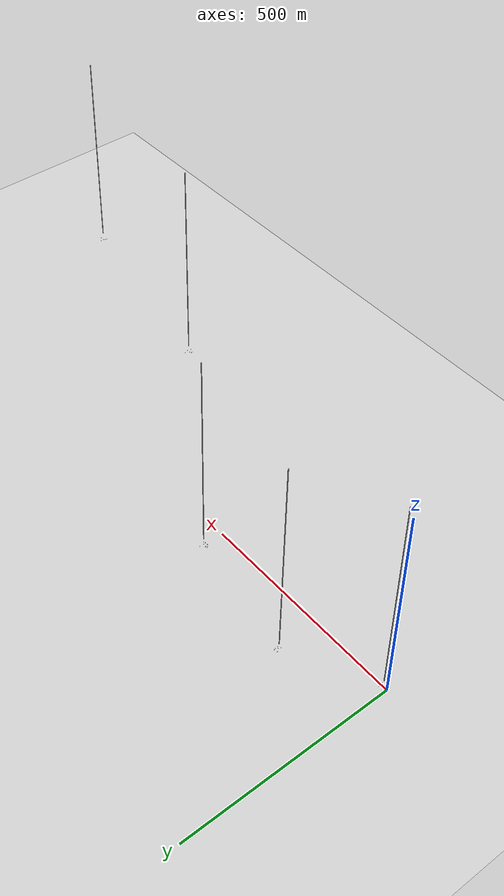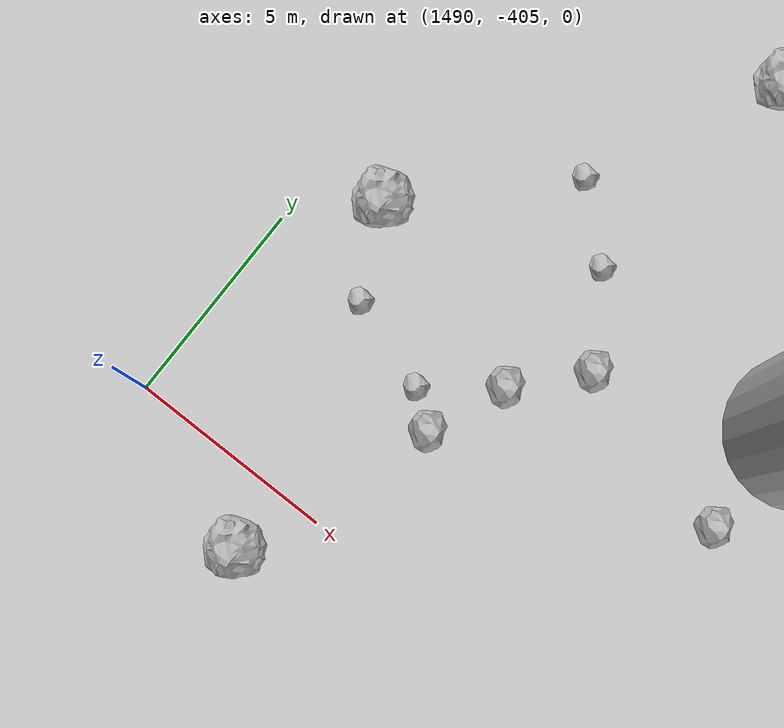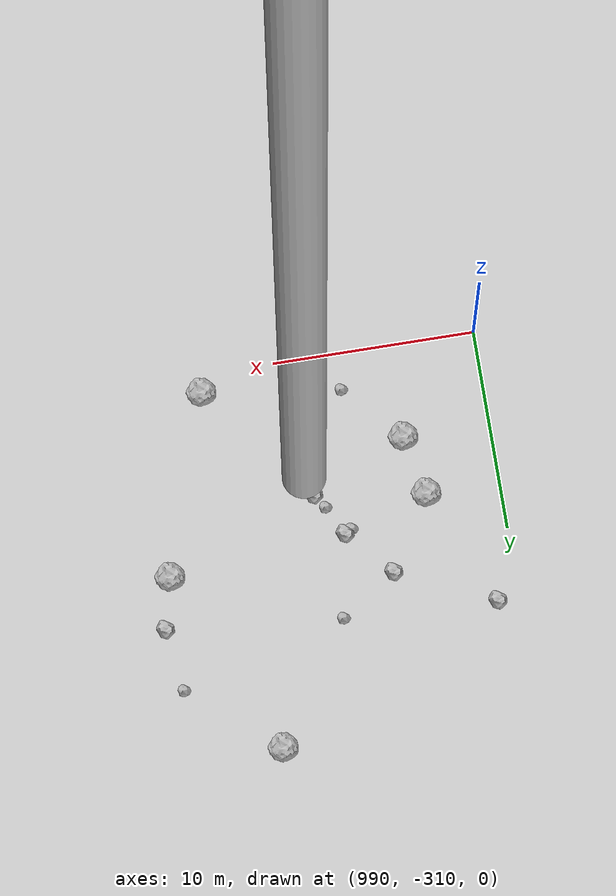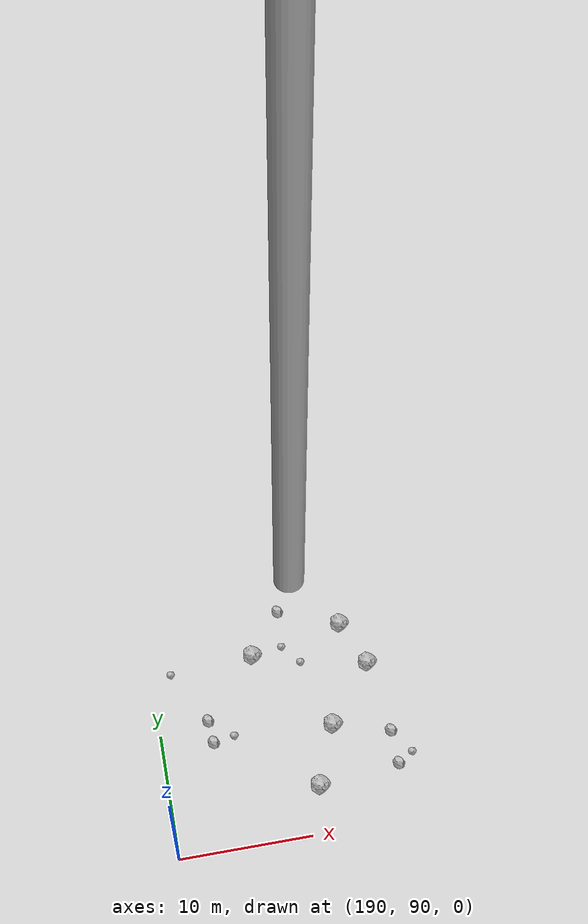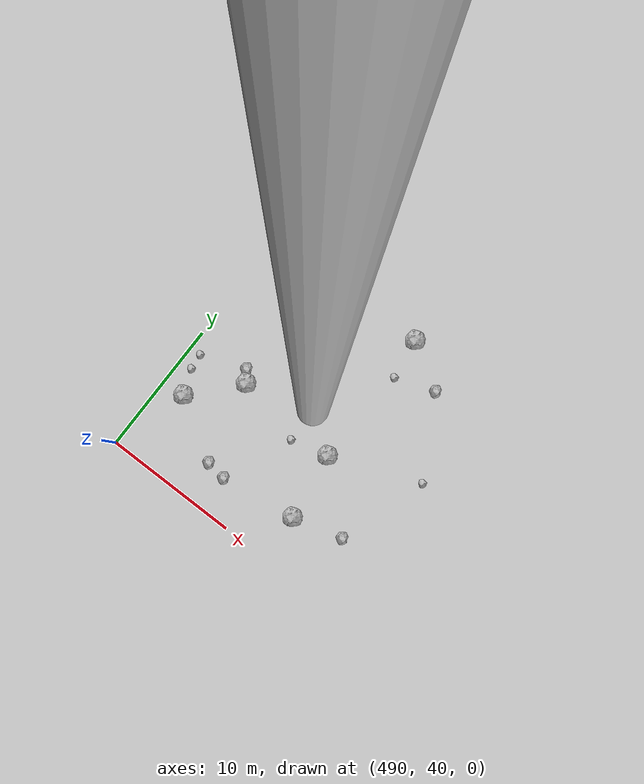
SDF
<?xml version="1.0" ?>
<sdf version="1.6">
  <world name="default">

    <include>
      <uri>model://custom_ground</uri>
    </include>

    <include>
      <uri>model://sun</uri>
    </include>

    <spherical_coordinates>
      <surface_model>EARTH_WGS84</surface_model>
      <latitude_deg>38.161479</latitude_deg>
      <longitude_deg>-122.454630</longitude_deg>
      <elevation>488.0</elevation>
      <heading_deg>90</heading_deg>
    </spherical_coordinates>

    <model name="rock1_0_0">
      <include>
        <uri>model://rock1</uri>
        <pose>5.361371575355673 -5.562071247192614 0.5 0 0 0</pose>
      </include>
    </model>
    <model name="rock1_0_1">
      <include>
        <uri>model://rock1</uri>
        <pose>9.066539885911045 5.170384633462001 0.5 0 0 0</pose>
      </include>
    </model>
    <model name="rock1_0_2">
      <include>
        <uri>model://rock1</uri>
        <pose>17.635270850487128 -5.03706850288153 0.5 0 0 0</pose>
      </include>
    </model>
    <model name="rock1_0_3">
      <include>
        <uri>model://rock1</uri>
        <pose>4.047128341902296 2.9921096299040215 0.5 0 0 0</pose>
      </include>
    </model>
    <model name="rock1_0_4">
      <include>
        <uri>model://rock1</uri>
        <pose>3.085763305759668 -1.9009802048457018 0.5 0 0 0</pose>
      </include>
    </model>
    <model name="rock2_0_0">
      <include>
        <uri>model://rock2</uri>
        <pose>18.949890124014836 2.3386258012880603 0.3 0 0 0</pose>
      </include>
    </model>
    <model name="rock2_0_1">
      <include>
        <uri>model://rock2</uri>
        <pose>15.730833101350356 5.807730624180056 0.3 0 0 0</pose>
      </include>
    </model>
    <model name="rock2_0_2">
      <include>
        <uri>model://rock2</uri>
        <pose>3.65006248849584 1.9543995263478244 0.3 0 0 0</pose>
      </include>
    </model>
    <model name="rock2_0_3">
      <include>
        <uri>model://rock2</uri>
        <pose>13.796568953522538 -1.8524413154236292 0.3 0 0 0</pose>
      </include>
    </model>
    <model name="rock2_0_4">
      <include>
        <uri>model://rock2</uri>
        <pose>3.318561981349788 -1.3610566554436616 0.3 0 0 0</pose>
      </include>
    </model>
    <model name="rock3_0_0">
      <include>
        <uri>model://rock3</uri>
        <pose>16.194359606762823 2.7656466424498447 0.2 0 0 0</pose>
      </include>
    </model>
    <model name="rock3_0_1">
      <include>
        <uri>model://rock3</uri>
        <pose>8.173491810971301 -3.5479920485762513 0.2 0 0 0</pose>
      </include>
    </model>
    <model name="rock3_0_2">
      <include>
        <uri>model://rock3</uri>
        <pose>9.053244310201535 -8.09079819648371 0.2 0 0 0</pose>
      </include>
    </model>
    <model name="rock3_0_3">
      <include>
        <uri>model://rock3</uri>
        <pose>10.245353828570956 -7.2369116216305045 0.2 0 0 0</pose>
      </include>
    </model>
    <model name="rock3_0_4">
      <include>
        <uri>model://rock3</uri>
        <pose>12.761947224925564 4.805795794444496 0.2 0 0 0</pose>
      </include>
    </model>
    <model name="rock1_1_0">
      <include>
        <uri>model://rock1</uri>
        <pose>205.5294299264272 107.06716716635378 0.5 0 0 0</pose>
      </include>
    </model>
    <model name="rock1_1_1">
      <include>
        <uri>model://rock1</uri>
        <pose>206.97368145119142 103.22771538347004 0.5 0 0 0</pose>
      </include>
    </model>
    <model name="rock1_1_2">
      <include>
        <uri>model://rock1</uri>
        <pose>198.14901219835627 105.46395553745253 0.5 0 0 0</pose>
      </include>
    </model>
    <model name="rock1_1_3">
      <include>
        <uri>model://rock1</uri>
        <pose>203.22581242317375 98.44025108495116 0.5 0 0 0</pose>
      </include>
    </model>
    <model name="rock1_1_4">
      <include>
        <uri>model://rock1</uri>
        <pose>201.29551996770164 93.67836825565688 0.5 0 0 0</pose>
      </include>
    </model>
    <model name="rock2_1_0">
      <include>
        <uri>model://rock2</uri>
        <pose>193.80927786742765 100.54957281597883 0.3 0 0 0</pose>
      </include>
    </model>
    <model name="rock2_1_1">
      <include>
        <uri>model://rock2</uri>
        <pose>200.80310042837948 109.15423288083144 0.3 0 0 0</pose>
      </include>
    </model>
    <model name="rock2_1_2">
      <include>
        <uri>model://rock2</uri>
        <pose>207.48298271274592 94.44295807110377 0.3 0 0 0</pose>
      </include>
    </model>
    <model name="rock2_1_3">
      <include>
        <uri>model://rock2</uri>
        <pose>207.5050550243369 97.21110931071696 0.3 0 0 0</pose>
      </include>
    </model>
    <model name="rock2_1_4">
      <include>
        <uri>model://rock2</uri>
        <pose>193.95244544151126 98.68415832500506 0.3 0 0 0</pose>
      </include>
    </model>
    <model name="rock3_1_0">
      <include>
        <uri>model://rock3</uri>
        <pose>195.58498729210598 98.95455196819735 0.2 0 0 0</pose>
      </include>
    </model>
    <model name="rock3_1_1">
      <include>
        <uri>model://rock3</uri>
        <pose>208.7097928656674 95.18878826345104 0.2 0 0 0</pose>
      </include>
    </model>
    <model name="rock3_1_2">
      <include>
        <uri>model://rock3</uri>
        <pose>191.5096075005673 105.02270450874141 0.2 0 0 0</pose>
      </include>
    </model>
    <model name="rock3_1_3">
      <include>
        <uri>model://rock3</uri>
        <pose>201.77784491750043 104.31099310648898 0.2 0 0 0</pose>
      </include>
    </model>
    <model name="rock3_1_4">
      <include>
        <uri>model://rock3</uri>
        <pose>200.54089285268697 105.93531660262036 0.2 0 0 0</pose>
      </include>
    </model>
    <model name="rock1_2_0">
      <include>
        <uri>model://rock1</uri>
        <pose>491.7245375313464 45.663019025798135 0.5 0 0 0</pose>
      </include>
    </model>
    <model name="rock1_2_1">
      <include>
        <uri>model://rock1</uri>
        <pose>502.50762253813195 48.59866101027021 0.5 0 0 0</pose>
      </include>
    </model>
    <model name="rock1_2_2">
      <include>
        <uri>model://rock1</uri>
        <pose>502.37756780003326 58.96687590728102 0.5 0 0 0</pose>
      </include>
    </model>
    <model name="rock1_2_3">
      <include>
        <uri>model://rock1</uri>
        <pose>494.7394645637571 49.08218639445923 0.5 0 0 0</pose>
      </include>
    </model>
    <model name="rock1_2_4">
      <include>
        <uri>model://rock1</uri>
        <pose>503.25375615467067 43.59818404860283 0.5 0 0 0</pose>
      </include>
    </model>
    <model name="rock2_2_0">
      <include>
        <uri>model://rock2</uri>
        <pose>494.0883873382553 49.91291381145484 0.3 0 0 0</pose>
      </include>
    </model>
    <model name="rock2_2_1">
      <include>
        <uri>model://rock2</uri>
        <pose>496.1055932485503 42.97403916481857 0.3 0 0 0</pose>
      </include>
    </model>
    <model name="rock2_2_2">
      <include>
        <uri>model://rock2</uri>
        <pose>497.61031635611437 42.760184122594616 0.3 0 0 0</pose>
      </include>
    </model>
    <model name="rock2_2_3">
      <include>
        <uri>model://rock2</uri>
        <pose>506.9506529397358 44.59370634172937 0.3 0 0 0</pose>
      </include>
    </model>
    <model name="rock2_2_4">
      <include>
        <uri>model://rock2</uri>
        <pose>505.75550056238563 56.986217328512076 0.3 0 0 0</pose>
      </include>
    </model>
    <model name="rock3_2_0">
      <include>
        <uri>model://rock3</uri>
        <pose>490.83855361618816 48.644059371362935 0.2 0 0 0</pose>
      </include>
    </model>
    <model name="rock3_2_1">
      <include>
        <uri>model://rock3</uri>
        <pose>502.8102516858882 55.92472612560401 0.2 0 0 0</pose>
      </include>
    </model>
    <model name="rock3_2_2">
      <include>
        <uri>model://rock3</uri>
        <pose>509.06725428763315 51.18436382683931 0.2 0 0 0</pose>
      </include>
    </model>
    <model name="rock3_2_3">
      <include>
        <uri>model://rock3</uri>
        <pose>490.9584161335018 47.46743536891083 0.2 0 0 0</pose>
      </include>
    </model>
    <model name="rock3_2_4">
      <include>
        <uri>model://rock3</uri>
        <pose>499.7307516485418 47.86060000438553 0.2 0 0 0</pose>
      </include>
    </model>
    <model name="rock1_3_0">
      <include>
        <uri>model://rock1</uri>
        <pose>1006.6720822742031 -300.1827411458867 0.5 0 0 0</pose>
      </include>
    </model>
    <model name="rock1_3_1">
      <include>
        <uri>model://rock1</uri>
        <pose>993.6638437997506 -302.316365209603 0.5 0 0 0</pose>
      </include>
    </model>
    <model name="rock1_3_2">
      <include>
        <uri>model://rock1</uri>
        <pose>1003.7290322474942 -309.0474073722342 0.5 0 0 0</pose>
      </include>
    </model>
    <model name="rock1_3_3">
      <include>
        <uri>model://rock1</uri>
        <pose>1002.5653840831637 -291.012537423584 0.5 0 0 0</pose>
      </include>
    </model>
    <model name="rock1_3_4">
      <include>
        <uri>model://rock1</uri>
        <pose>994.311756717617 -305.27412473127214 0.5 0 0 0</pose>
      </include>
    </model>
    <model name="rock2_3_0">
      <include>
        <uri>model://rock2</uri>
        <pose>991.0836734603918 -296.5164995851439 0.3 0 0 0</pose>
      </include>
    </model>
    <model name="rock2_3_1">
      <include>
        <uri>model://rock2</uri>
        <pose>997.8912919450737 -300.9684123678711 0.3 0 0 0</pose>
      </include>
    </model>
    <model name="rock2_3_2">
      <include>
        <uri>model://rock2</uri>
        <pose>995.8580716949585 -298.71478781669316 0.3 0 0 0</pose>
      </include>
    </model>
    <model name="rock2_3_3">
      <include>
        <uri>model://rock2</uri>
        <pose>1007.2811644249286 -297.67069719046253 0.3 0 0 0</pose>
      </include>
    </model>
    <model name="rock2_3_4">
      <include>
        <uri>model://rock2</uri>
        <pose>999.0888404319868 -303.12278602632307 0.3 0 0 0</pose>
      </include>
    </model>
    <model name="rock3_3_0">
      <include>
        <uri>model://rock3</uri>
        <pose>998.6122793446931 -296.8832322834284 0.2 0 0 0</pose>
      </include>
    </model>
    <model name="rock3_3_1">
      <include>
        <uri>model://rock3</uri>
        <pose>997.5153191811597 -301.1943297338751 0.2 0 0 0</pose>
      </include>
    </model>
    <model name="rock3_3_2">
      <include>
        <uri>model://rock3</uri>
        <pose>996.8879217794824 -308.1665103537484 0.2 0 0 0</pose>
      </include>
    </model>
    <model name="rock3_3_3">
      <include>
        <uri>model://rock3</uri>
        <pose>1006.833649507563 -294.5945855179782 0.2 0 0 0</pose>
      </include>
    </model>
    <model name="rock3_3_4">
      <include>
        <uri>model://rock3</uri>
        <pose>998.5996086455992 -302.46620328456544 0.2 0 0 0</pose>
      </include>
    </model>
    <model name="rock1_4_0">
      <include>
        <uri>model://rock1</uri>
        <pose>1497.2449819783455 -390.3937540286578 0.5 0 0 0</pose>
      </include>
    </model>
    <model name="rock1_4_1">
      <include>
        <uri>model://rock1</uri>
        <pose>1503.7047007254469 -393.9727389353931 0.5 0 0 0</pose>
      </include>
    </model>
    <model name="rock1_4_2">
      <include>
        <uri>model://rock1</uri>
        <pose>1491.6383802736952 -398.26788050999807 0.5 0 0 0</pose>
      </include>
    </model>
    <model name="rock1_4_3">
      <include>
        <uri>model://rock1</uri>
        <pose>1503.8519988997787 -408.65976312568813 0.5 0 0 0</pose>
      </include>
    </model>
    <model name="rock1_4_4">
      <include>
        <uri>model://rock1</uri>
        <pose>1493.9357117731136 -406.5716375257307 0.5 0 0 0</pose>
      </include>
    </model>
    <model name="rock2_4_0">
      <include>
        <uri>model://rock2</uri>
        <pose>1502.1289830430756 -399.482498802641 0.3 0 0 0</pose>
      </include>
    </model>
    <model name="rock2_4_1">
      <include>
        <uri>model://rock2</uri>
        <pose>1497.8220880849294 -398.35986641920556 0.3 0 0 0</pose>
      </include>
    </model>
    <model name="rock2_4_2">
      <include>
        <uri>model://rock2</uri>
        <pose>1496.4629233149342 -399.88795104268485 0.3 0 0 0</pose>
      </include>
    </model>
    <model name="rock2_4_3">
      <include>
        <uri>model://rock2</uri>
        <pose>1508.304281006275 -397.84468283103087 0.3 0 0 0</pose>
      </include>
    </model>
    <model name="rock2_4_4">
      <include>
        <uri>model://rock2</uri>
        <pose>1495.6894600292037 -401.7761820672744 0.3 0 0 0</pose>
      </include>
    </model>
    <model name="rock3_4_0">
      <include>
        <uri>model://rock3</uri>
        <pose>1494.9138197282102 -394.9605006847223 0.2 0 0 0</pose>
      </include>
    </model>
    <model name="rock3_4_1">
      <include>
        <uri>model://rock3</uri>
        <pose>1496.5069228339296 -396.38119298461544 0.2 0 0 0</pose>
      </include>
    </model>
    <model name="rock3_4_2">
      <include>
        <uri>model://rock3</uri>
        <pose>1494.843272195989 -401.18351640378256 0.2 0 0 0</pose>
      </include>
    </model>
    <model name="rock3_4_3">
      <include>
        <uri>model://rock3</uri>
        <pose>1492.6227120914552 -400.4205706387877 0.2 0 0 0</pose>
      </include>
    </model>
    <model name="rock3_4_4">
      <include>
        <uri>model://rock3</uri>
        <pose>1509.6994184475577 -401.9982110959928 0.2 0 0 0</pose>
      </include>
    </model>

    <model name="cylinder_1">
      <static>true</static>
      <link name="link">
        <visual name="visual">
          <geometry>
            <cylinder>
              <radius>1</radius>
              <length>500</length>
            </cylinder>
          </geometry>
        </visual>
      </link>
      <pose>10 0 270 0 0 0</pose>
    </model>

    <model name="cylinder_2">
      <static>true</static>
      <link name="link">
        <visual name="visual">
          <geometry>
            <cylinder>
              <radius>1</radius>
              <length>500</length>
            </cylinder>
          </geometry>
        </visual>
      </link>
      <pose>200 100 270 0 0 0</pose>
    </model>

    <model name="cylinder_3">
      <static>true</static>
      <link name="link">
        <visual name="visual">
          <geometry>
            <cylinder>
              <radius>1</radius>
              <length>500</length>
            </cylinder>
          </geometry>
        </visual>
      </link>
      <pose>500 50 270 0 0 0</pose>
    </model>

    <model name="cylinder_4">
      <static>true</static>
      <link name="link">
        <visual name="visual">
          <geometry>
            <cylinder>
              <radius>1</radius>
              <length>500</length>
            </cylinder>
          </geometry>
        </visual>
      </link>
      <pose>1000 -300 270 0 0 0</pose>
    </model>

    <model name="cylinder_5">
      <static>true</static>
      <link name="link">
        <visual name="visual">
          <geometry>
            <cylinder>
              <radius>1</radius>
              <length>500</length>
            </cylinder>
          </geometry>
        </visual>
      </link>
      <pose>1500 -400 270 0 0 0</pose>
    </model>

  </world>
</sdf>

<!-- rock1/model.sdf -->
<sdf version="1.6">
  <model name="rock1">
    <static>true</static> <!-- Set to true if the model should not move -->
    <pose>0 0 0 0 0 0</pose>

    <!--z offset is 0.5 for full scale-->

    <link name="link">
      <collision name="rock1_collision">
        <geometry>
          <mesh>
            <uri>model://meshes/rock1.dae</uri>
          </mesh>
        </geometry>
      </collision>
      <visual name="rock1_visual">
        <geometry>
          <mesh>
            <uri>model://meshes/rock1.dae</uri>
          </mesh>
        </geometry>
        <material>
          <script>
            <uri>model://materials/scripts/sand_pebbles.material</uri>
            <name>custom_ground/Image</name>
          </script>
        </material>
      </visual>
    </link>
  </model>
</sdf>

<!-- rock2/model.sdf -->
<sdf version="1.6">
  <model name="rock2">
    <static>true</static> <!-- Set to true if the model should not move -->
    <pose>0 0 0 0 0 0</pose>

    <!--z offset is 0.3 for full scale-->

    <link name="link">
      <collision name="rock2_collision">
        <geometry>
          <mesh>
            <uri>model://meshes/rock2.dae</uri>
          </mesh>
        </geometry>
      </collision>
      <visual name="rock2_visual">
        <geometry>
          <mesh>
            <uri>model://meshes/rock2.dae</uri>
          </mesh>
        </geometry>
        <material>
          <script>
            <uri>model://materials/scripts/sand_pebbles.material</uri>
            <name>custom_ground/Image</name>
          </script>
        </material>
      </visual>
    </link>
  </model>
</sdf>

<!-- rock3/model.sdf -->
<sdf version="1.6">
  <model name="rock3">
    <static>true</static> <!-- Set to true if the model should not move -->
    <pose>0 0 0 0 0 0</pose>

    <!--z offset is 0.2 for full scale-->

    <link name="link">
      <collision name="rock3_collision">
        <geometry>
          <mesh>
            <uri>model://meshes/rock3.dae</uri>
          </mesh>
        </geometry>
      </collision>
      <visual name="rock3_visual">
        <geometry>
          <mesh>
            <uri>model://meshes/rock3.dae</uri>
          </mesh>
        </geometry>
        <material>
          <script>
            <uri>model://materials/scripts/sand_pebbles.material</uri>
            <name>custom_ground/Image</name>
          </script>
        </material>
      </visual>
    </link>
  </model>
</sdf>

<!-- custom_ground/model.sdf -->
<sdf version="1.6">
  <model name="custom_ground">
    <static>true</static> <!-- Ground is static and immovable -->
    <link name="ground_link">
      <pose>240 0 0 0 0 0</pose> <!-- Position and orientation relative to the world -->
      <!-- Visual Representation -->
      <visual name="ground_visual">
        <geometry>
          <plane>
            <normal>0 0 1</normal> <!-- Upward facing plane -->
            <size>500 500</size> <!-- Size of the plane -->
          </plane>
        </geometry>
        <material>
          <script>
            <uri>model://materials/scripts/sand_pebbles.material</uri>
            <name>custom_ground/Image</name>
          </script>
        </material>
      </visual>

      <!-- Collision Representation -->
      <collision name="ground_collision">
        <geometry>
          <plane>
            <normal>0 0 1</normal>
            <size>100 100</size>
          </plane>
        </geometry>
      </collision>

    </link>
  </model>
</sdf>
